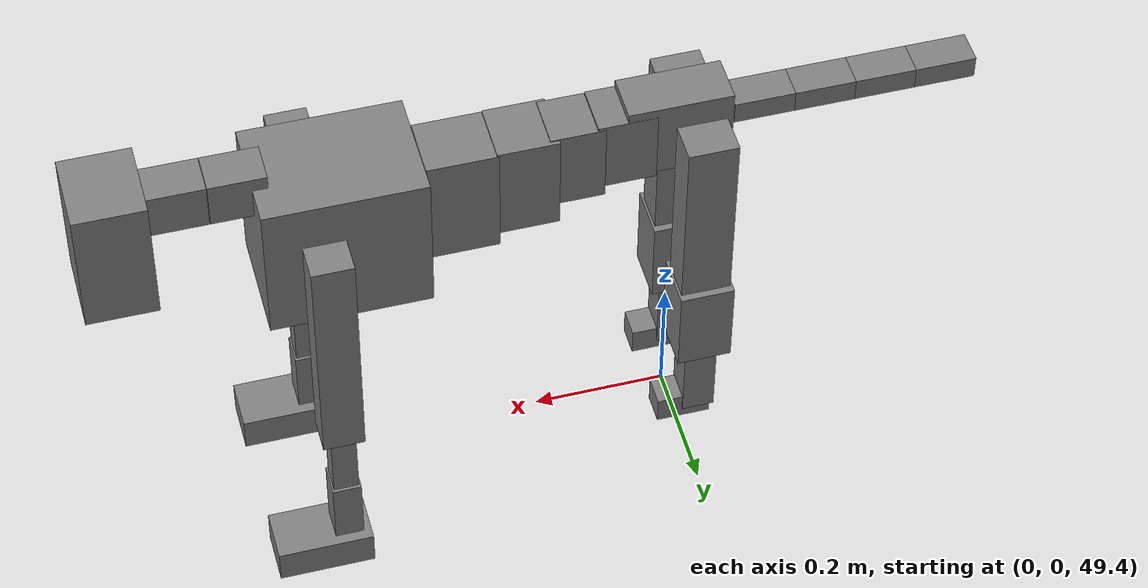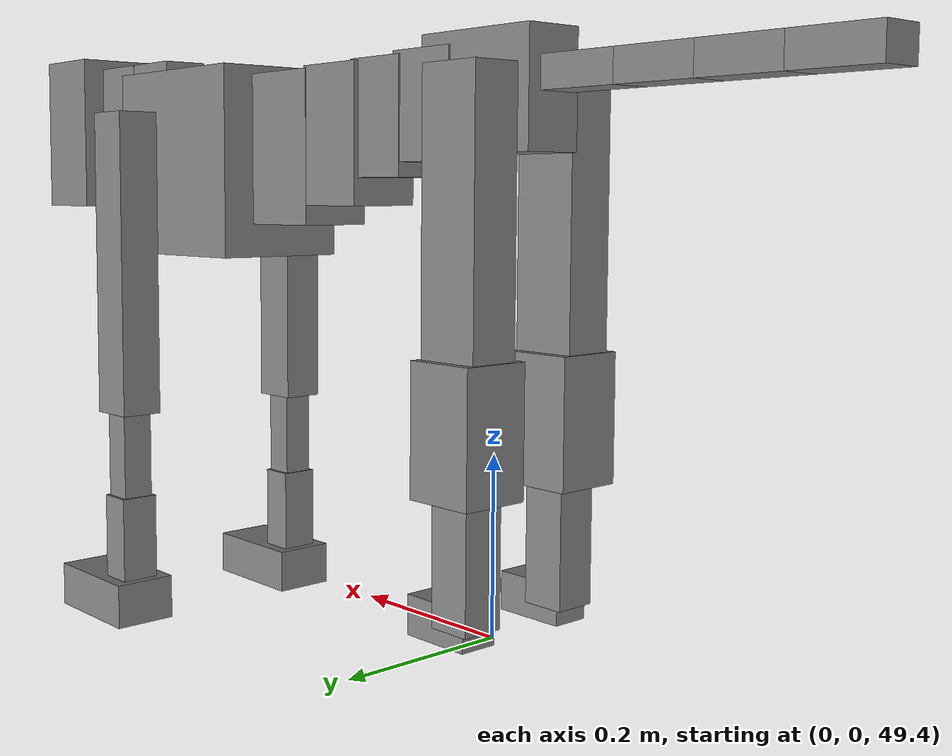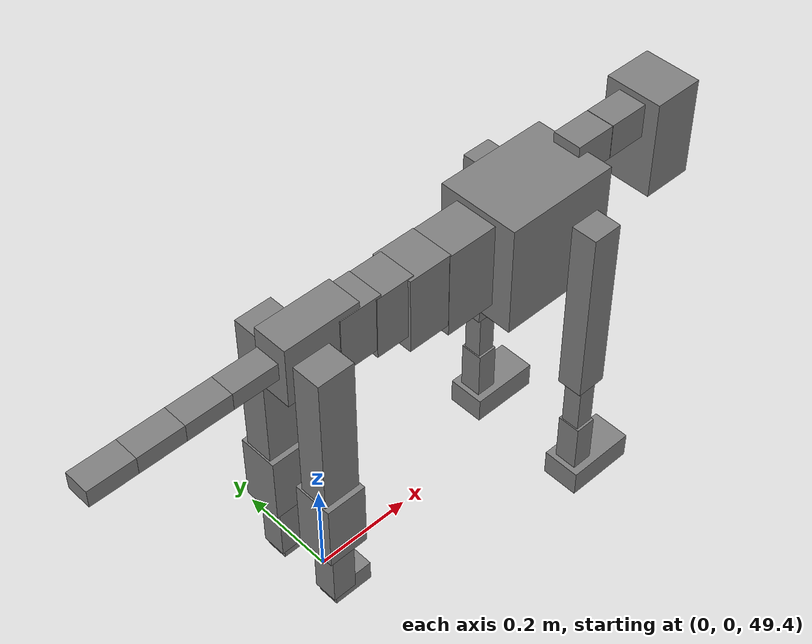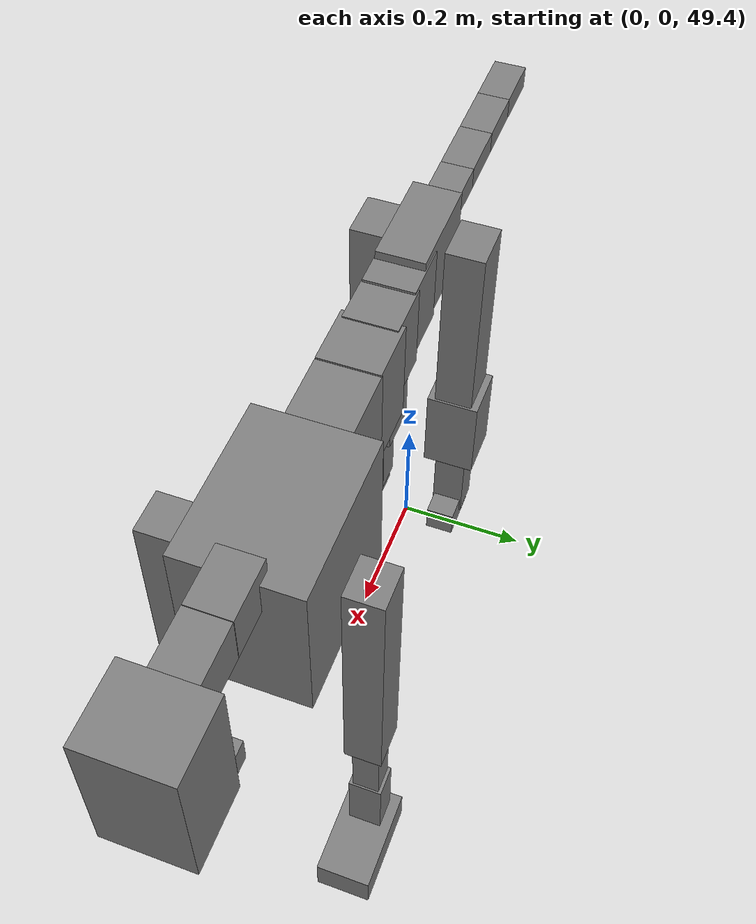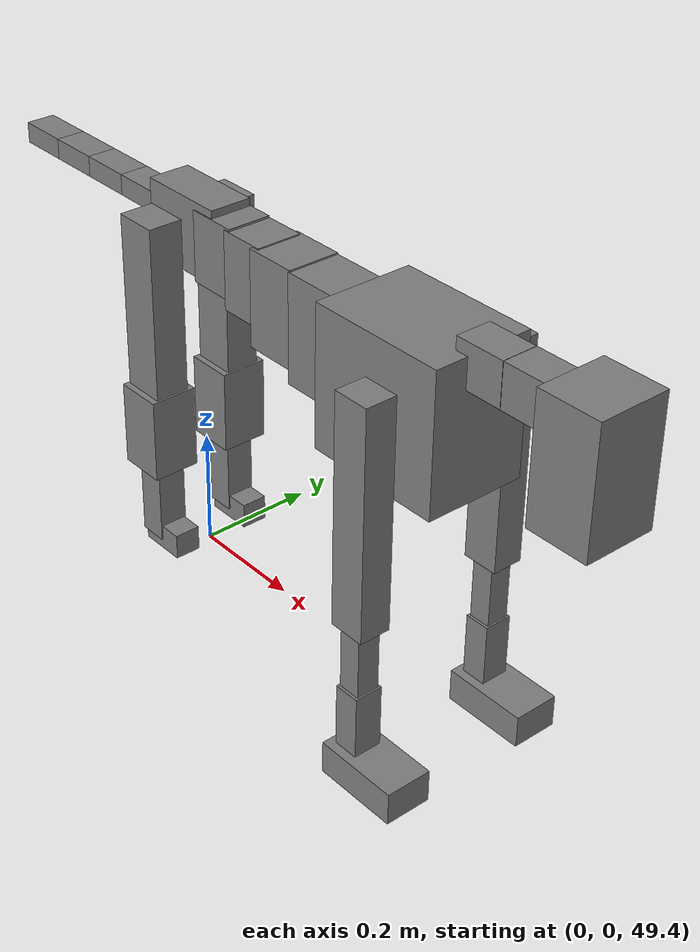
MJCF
<mujoco model="dog">

    <default>
        <joint armature="0.02" stiffness="1" damping="0.2" limited="true"/>
        <geom condim="3" friction="1 0.05 0.05" margin="0.01"/>
        <motor ctrllimited="true" ctrlrange="-1.0 1.0" forcelimited="true" gear="50"/>
    </default>

    <compiler inertiafromgeom="true" angle="radian"/>

    <option timestep="0.016" iterations="50" tolerance="1e-10" solver="Newton" jacobian="dense" cone="pyramidal"/>

    <size nconmax="20000" njmax="60000" nstack="5000000"/>
    <visual>
        <map force="0.1" zfar="30"/>
        <rgba haze="0.15 0.25 0.35 1"/>
        <quality shadowsize="2048"/>
        <global offwidth="800" offheight="800"/>
    </visual>

    <asset>
        <texture type="skybox" builtin="gradient" rgb1="0.3 0.5 0.7" rgb2="0 0 0" width="512" height="512"/>
        <texture name="texplane" type="2d" builtin="checker" rgb1=".2 .3 .4" rgb2=".1 0.15 0.2" width="512" height="512"
                 mark="cross" markrgb=".8 .8 .8"/>
        <texture name="texgeom" type="cube" builtin="flat" mark="cross" width="127" height="1278" rgb1="0.8 0.6 0.4"
                 rgb2="0.8 0.6 0.4" markrgb="1 1 1" random="0.01"/>

        <material name="matplane" reflectance="0.3" texture="texplane" texrepeat="1 1" texuniform="true"/>
        <material name="matgeom" texture="texgeom" texuniform="true" rgba="0.8 0.6 .4 1"/>
    </asset>

    <worldbody>
        <geom name="floor" pos="0 0 0" size="0 0 .25" type="plane" material="matplane" condim="3"/>

        <light directional="false" diffuse=".2 .2 .2" specular="0 0 0" pos="0 0 5" dir="0 0 -1" castshadow="false"/>
        <light mode="targetbodycom" target="torso" directional="false" diffuse=".8 .8 .8" specular="0.3 0.3 0.3"
               pos="0 0 4.0" dir="0 0 -1"/>

        <body name="root" pos="0 0 50">
            <freejoint name="root_1"/>
            <geom type="box" pos="0 0 -0.02" size="0.0774  0.0358  0.063" density="2030"/>

            <body name="spine1" pos="0.054 0 0">
                <joint name="spine1_y" axis="0 1 0" range="0 0.7" limited="true"/>
                <geom type="box" pos="0.02375 0 -0.03" size="0.04375  0.0375  0.05985" density="2030"/>

                <body name="spine2" pos="0.0612 0 0">
                    <joint name="spine2_y" axis="0 1 0" range="-0.15 0.15" limited="true"/>
                    <geom type="box" pos="0.03555  0  -0.04" size="0.04055  0.039  0.06615" density="2030"/>

                    <body name="spine3" pos="0.0730 0 0">
                        <joint name="spine3_y" axis="0 1 0" range="-0.15 0.15" limited="true"/>
                        <geom type="box" pos="0.03555  0  -0.057" size="0.04555  0.0445  0.081" density="2030"/>

                        <body name="spine4" pos="0.0780 0 0">
                            <joint name="spine4_y" axis="0 1 0" range="-0.15 0.15" limited="true"/>
                            <geom type="box" pos="0.05265  0  -0.07" size="0.05265  0.045  0.09135" density="2030"/>

                            <body name="torso" pos="0.1082 0 0">
                                <joint name="torso_y" axis="0 1 0" range="-0.15 0.15" limited="true"/>
                                <geom type="box" pos="0.11925  0  -0.085" size="0.11925  0.085  0.11745"
                                      density="2030"/>

                                <body name="neck1" pos="0.2160  0   0.0180">
                                    <joint name="neck1_y" axis="0 1 0" range="-1.2  -1" limited="true"/>
                                    <geom type="box" pos="0.0423  0  0" size="0.0423  0.03  0.036" density="2325"/>

                                    <body name="neck2" pos="0.0853  0  0">
                                        <joint name="neck2_y" axis="0 1 0" range="0.1  0" limited="true"/>
                                        <geom type="box" pos="0.0423  0  0" size="0.0423  0.03  0.036" density="2325"/>

                                        <body name="head" pos="0.0853  0  0">
                                            <joint name="head_y" axis="0 1 0" range="-0.3  -0.2" limited="true"/>
                                            <geom type="box" pos="0.0531  0  -0.055" size="0.0531  0.06  0.1044"
                                                  density="4030"/>

                                        </body>
                                    </body>
                                </body>

                                <body name="front_shoulder" pos="0.156  0   -0.0480">
                                    <joint name="front_shoulder_y" axis="0 1 0" range="-1 1.5" limited="true"/>
                                    <geom type="box" pos="0 0.13 -0.1659" size="0.0311  0.0266  0.1925" density="1158"/>
                                    <geom type="box" pos="0 -0.13 -0.1659" size="0.0311  0.0266  0.1925"
                                          density="1158"/>

                                    <body name="front_elbow" pos="0  0  -0.3317">
                                        <joint name="front_elbow_y" axis="0 1 0" range="-2 0" limited="true"/>
                                        <geom type="box" pos="0 0.13 -0.0744" size="0.0190  0.0194  0.0744"
                                              density="1081"/>
                                        <geom type="box" pos="0 -0.13 -0.0744" size="0.0190  0.0194  0.0744"
                                              density="1081"/>

                                        <body name="front_wrist" pos="0  0  -0.1487">
                                            <joint name="front_wrist_y" axis="0 1 0" range="-0.2 0" limited="true"/>
                                            <geom type="box" pos="0 0.13 -0.0547" size="0.0217  0.0241  0.0679"
                                                  density="1664"/>
                                            <geom type="box" pos="0 -0.13 -0.0547" size="0.0217  0.0241  0.0679"
                                                  density="1664"/>

                                            <body name="front_finger_end" pos="0  0  -0.1094">
                                                <joint name="front_finger_y" axis="0 1 0" range="-0.4 1"
                                                       limited="true"/>
                                                <geom type="box" pos="0.0396  0.13  -0.0128"
                                                      size="0.0726  0.0396  0.0278" density="1515"/>
                                                <geom type="box" pos="0.0396  -0.13  -0.0128"
                                                      size="0.0726  0.0396  0.0278" density="1515"/>

                                            </body>

                                        </body>
                                    </body>
                                </body>

                            </body>
                        </body>
                    </body>
                </body>
            </body>

            <body name="back_hip" pos="-0.03 0 -0.018">
                <joint name="back_hip_y" axis="0 1 0" range="-1.5 0.3" limited="true"/>
                <geom type="box" pos="0 0.07 -0.1447" size="0.0373  0.0293  0.1675" density="1154"/>
                <geom type="box" pos="0 -0.07 -0.1447" size="0.0373  0.0293  0.1675" density="1154"/>

                <body name="back_knee" pos="0  0  -0.2894">
                    <joint name="back_knee_y" axis="0 1 0" range="0 2.8" limited="true"/>
                    <geom type="box" pos="0 0.07 -0.0560" size="0.0408  0.0402  0.0715" density="1227"/>
                    <geom type="box" pos="0 -0.07 -0.0560" size="0.0408  0.0402  0.0715" density="1227"/>

                    <body name="back_ankle" pos="0  0  -0.1120">
                        <joint name="back_ankle_y" axis="0 1 0" range="-2.2 0" limited="true"/>
                        <geom type="box" pos="0 0.07 -0.0685" size="0.0246  0.0246  0.0798" density="1284"/>
                        <geom type="box" pos="0 -0.07 -0.0685" size="0.0246  0.0246  0.0798" density="1284"/>

                        <body name="back_toe_end" pos="0  0  -0.1370">
                            <joint name="back_toe_y" axis="0 1 0" range="-0.4 1" limited="true"/>
                            <geom type="box" pos="0.0223  0.07  -0.0068" size="0.0409  0.0223  0.0218" density="1515"/>
                            <geom type="box" pos="0.0223  -0.07  -0.0068" size="0.0409  0.0223  0.0218" density="1515"/>

                        </body>
                    </body>
                </body>
            </body>

            <body name="tail1" pos="-0.074 0 -0.006">
                <joint name="tail1_y" axis="0 1 0" range="-0.2 0.2" limited="true"/>
                <geom type="box" pos="-0.0536  0  0" size="0.045  0.025  0.0175" density="1587"/>

                <body name="tail2" pos="-0.09 0 0">
                    <joint name="tail2_y" axis="0 1 0" range="-0.2 0.2" limited="true"/>
                    <geom type="box" pos="-0.0536  0  0" size="0.045  0.025  0.0175" density="1587"/>

                    <body name="tail3" pos="-0.09 0 0">
                        <joint name="tail3_y" axis="0 1 0" range="-0.2 0.2" limited="true"/>
                        <geom type="box" pos="-0.0536  0  0" size="0.045  0.025  0.0175" density="1587"/>

                        <body name="tail4" pos="-0.09 0 0">
                            <joint name="tail4_y" axis="0 1 0" range="-0.2 0.2" limited="true"/>
                            <geom type="box" pos="-0.0536  0  0" size="0.045  0.025  0.0175" density="1587"/>

                        </body>
                    </body>
                </body>
            </body>
        </body>
    </worldbody>

    <actuator>
        <motor joint="spine1_y" forcerange="-150 150     "/>
        <motor joint="spine2_y" forcerange="-150 150     "/>
        <motor joint="spine3_y" forcerange="-150 150     "/>
        <motor joint="spine4_y" forcerange="-150 150     "/>
        <motor joint="torso_y" forcerange="-150 150     "/>
        <motor joint="neck1_y" forcerange="-100 100       "/>
        <motor joint="neck2_y" forcerange="-100 100       "/>
        <motor joint="head_y" forcerange="-150 150       "/>
        <motor joint="front_shoulder_y" forcerange="-118.99 158.33"/>
        <motor joint="front_elbow_y" forcerange="-105.31 135.92"/>
        <motor joint="front_wrist_y" forcerange="-99.61 93.15"/>
        <motor joint="front_finger_y" forcerange="-72.39 98.76"/>
        <motor joint="back_hip_y" forcerange="-292.89 297.13"/>
        <motor joint="back_knee_y" forcerange="-397.07 387.35"/>
        <motor joint="back_angle_y" forcerange="-130.92 163.35"/>
        <motor joint="back_toe_y" forcerange="-40.85 57.68"/>
        <motor joint="tail1_y" forcerange="-50 50     "/>
        <motor joint="tail2_y" forcerange="-50 50     "/>
        <motor joint="tail3_y" forcerange="-50 50     "/>
        <motor joint="tail4_y" forcerange="-50 50     "/>
    </actuator>
</mujoco>
